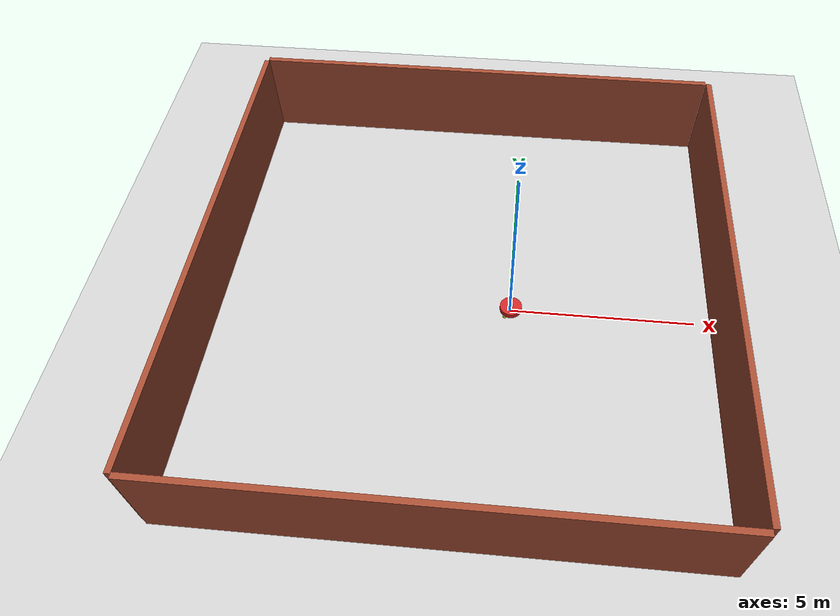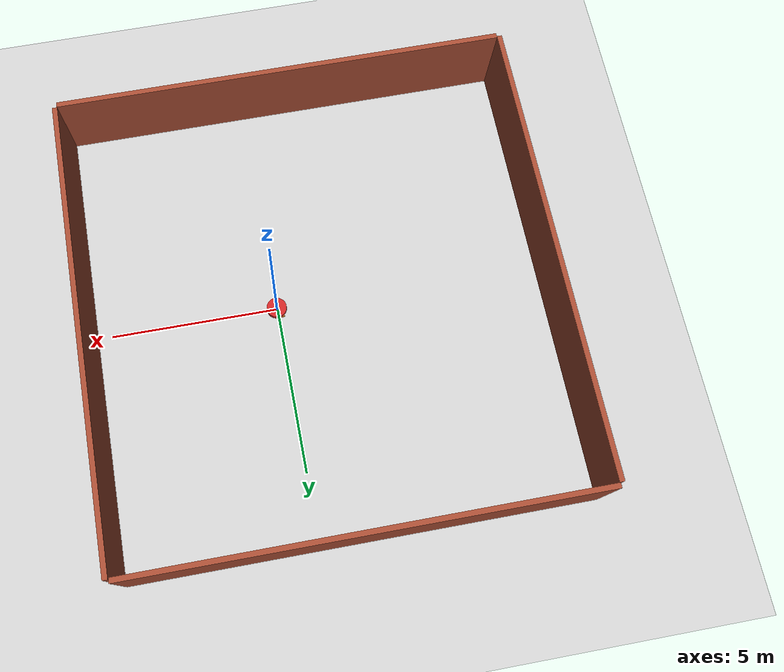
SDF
<sdf version="1.7">
 <world name="default">
  <light name="sun" type="directional">
   <pose>0 0 10 0 -0 0</pose>
   <diffuse>0.8 0.8 0.8 1</diffuse>
   <specular>0.2 0.2 0.2 1</specular>
   <attenuation>
    <range>1000</range>
    <constant>0.9</constant>
    <linear>0.01</linear>
    <quadratic>0.001</quadratic>
   </attenuation>
   <direction>-0.5 0.1 -0.9</direction>
   <spot><inner_angle>0</inner_angle><outer_angle>0</outer_angle><falloff>0</falloff></spot>
  </light>
  <model name="ground_plane">
   <static>1</static>
   <link name="link">
    <collision name="collision">
     <geometry><plane><normal>0 0 1</normal><size>100 100</size></plane></geometry>
     <surface>
      <contact><collide_bitmask>65535</collide_bitmask></contact>
      <friction><ode><mu>100</mu><mu2>50</mu2></ode></friction>
     </surface>
    </collision>
    <visual name="visual">
     <cast_shadows>0</cast_shadows>
     <geometry><plane><normal>0 0 1</normal><size>100 100</size></plane></geometry>
     <material>
      <script><uri>file://media/materials/scripts/gazebo.material</uri><name>Gazebo/Grey</name></script>
     </material>
    </visual>
   </link>
  </model>
  <gravity>0 0 -9.8</gravity>
  <magnetic_field>6e-06 2.3e-05 -4.2e-05</magnetic_field>
  <atmosphere type="adiabatic"/>
  <physics type="ode">
   <max_step_size>0.001</max_step_size>
   <real_time_factor>1</real_time_factor>
   <real_time_update_rate>1000</real_time_update_rate>
  </physics>
  <scene><ambient>0.4 0.4 0.4 1</ambient><background>0.7 0.7 0.7 1</background><shadows>1</shadows></scene>
  <audio><device>default</device></audio>
  <spherical_coordinates>
   <surface_model>EARTH_WGS84</surface_model>
   <latitude_deg>0</latitude_deg>
   <longitude_deg>0</longitude_deg>
   <elevation>0</elevation>
   <heading_deg>0</heading_deg>
  </spherical_coordinates>
  <model name="mobile_bot">
   <link name="base_link">
    <inertial>
     <pose>0.048 0 0.068 0 -0 0</pose>
     <mass>0.5</mass>
     <inertia>
      <ixx>0.00953633</ixx>
      <ixy>0</ixy>
      <ixz>0.001632</ixz>
      <iyy>0.0141443</iyy>
      <iyz>0</iyz>
      <izz>0.018333</izz>
     </inertia>
    </inertial>
    <collision name="base_link_fixed_joint_lump__round_body_collision">
     <pose>0 0 0.1 0 -0 0</pose>
     <geometry><cylinder><length>0.15</length><radius>0.3</radius></cylinder></geometry>
    </collision>
    <collision name="base_link_fixed_joint_lump__caster_wheel_collision_1">
     <pose>0.24 0 0 0 -0 0</pose>
     <geometry><sphere><radius>0.05</radius></sphere></geometry>
     <surface><friction><ode><mu>0.001</mu><mu2>0.001</mu2></ode></friction></surface>
    </collision>
    <collision name="base_link_fixed_joint_lump__lidar_link_collision_2">
     <pose>0 0 0.19 0 -0 0</pose>
     <geometry><cylinder><length>0.04</length><radius>0.05</radius></cylinder></geometry>
    </collision>
    <visual name="base_link_fixed_joint_lump__round_body_visual">
     <pose>0 0 0.1 0 -0 0</pose>
     <geometry><cylinder><length>0.15</length><radius>0.3</radius></cylinder></geometry>
     <material>
      <script><name>Gazebo/Red</name><uri>file://media/materials/scripts/gazebo.material</uri></script>
     </material>
    </visual>
    <visual name="base_link_fixed_joint_lump__camera_link_visual_1">
     <pose>0.3 0 0.07 0 -0 0</pose>
     <geometry><box><size>0.01 0.03 0.03</size></box></geometry>
     <material>
      <script><name>Gazebo/Green</name><uri>file://media/materials/scripts/gazebo.material</uri></script>
     </material>
    </visual>
    <visual name="base_link_fixed_joint_lump__caster_wheel_visual_2">
     <pose>0.24 0 0 0 -0 0</pose>
     <geometry><sphere><radius>0.05</radius></sphere></geometry>
     <material>
      <script><name>Gazebo/Blue</name><uri>file://media/materials/scripts/gazebo.material</uri></script>
     </material>
    </visual>
    <visual name="base_link_fixed_joint_lump__lidar_link_visual_3">
     <pose>0 0 0.19 0 -0 0</pose>
     <geometry><cylinder><length>0.04</length><radius>0.05</radius></cylinder></geometry>
     <material>
      <script><name>Gazebo/Green</name><uri>file://media/materials/scripts/gazebo.material</uri></script>
     </material>
    </visual>
    <sensor name="camera" type="camera">
     <visualize>1</visualize>
     <update_rate>10</update_rate>
     <camera>
      <horizontal_fov>1.5708</horizontal_fov>
      <image><format>R8G8B8</format><width>640</width><height>480</height></image>
      <clip><near>0.05</near><far>8</far></clip>
     </camera>
     <plugin name="camera_controller" filename="libgazebo_ros_camera.so">
      <frame_name>camera_link_optical</frame_name>
     </plugin>
     <pose>0.3 0 0.07 0 -0 0</pose>
    </sensor>
    <sensor name="laser" type="ray">
     <visualize>1</visualize>
     <update_rate>10</update_rate>
     <ray>
      <scan>
       <horizontal>
        <samples>180</samples>
        <min_angle>-0.7854</min_angle>
        <max_angle>0.7854</max_angle>
        <resolution>1</resolution>
       </horizontal>
       <vertical><samples>1</samples><min_angle>0</min_angle><max_angle>0</max_angle></vertical>
      </scan>
      <range><min>0.3</min><max>5</max></range>
     </ray>
     <plugin name="laser_controller" filename="libgazebo_ros_ray_sensor.so">
      <ros><argument>~/out:=scan</argument></ros>
      <output_type>sensor_msgs/LaserScan</output_type>
      <frame_name>lidar_link</frame_name>
     </plugin>
     <pose>0 0 0.19 0 -0 0</pose>
    </sensor>
   </link>
   <joint name="left_wheel_joint" type="revolute">
    <pose relative_to="base_link">-0.15 0.25 0 -1.57 0 0</pose>
    <parent>base_link</parent>
    <child>left_wheel</child>
    <axis>
     <xyz>0 0 1</xyz>
     <limit><lower>-1e+16</lower><upper>1e+16</upper></limit>
     <dynamics><spring_reference>0</spring_reference><spring_stiffness>0</spring_stiffness></dynamics>
    </axis>
   </joint>
   <link name="left_wheel">
    <pose relative_to="left_wheel_joint">0 0 0 0 -0 0</pose>
    <inertial>
     <mass>0.1</mass>
     <inertia>
      <ixx>8.33333e-05</ixx>
      <ixy>0</ixy>
      <ixz>0</ixz>
      <iyy>8.33333e-05</iyy>
      <iyz>0</iyz>
      <izz>0.000125</izz>
     </inertia>
    </inertial>
    <collision name="left_wheel_collision">
     <geometry><cylinder><length>0.04</length><radius>0.05</radius></cylinder></geometry>
    </collision>
    <visual name="left_wheel_visual">
     <geometry><cylinder><length>0.04</length><radius>0.05</radius></cylinder></geometry>
     <material>
      <script><name>Gazebo/Orange</name><uri>file://media/materials/scripts/gazebo.material</uri></script>
     </material>
    </visual>
   </link>
   <joint name="right_wheel_joint" type="revolute">
    <pose relative_to="base_link">-0.15 -0.25 0 1.57 -0 0</pose>
    <parent>base_link</parent>
    <child>right_wheel</child>
    <axis>
     <xyz>0 0 -1</xyz>
     <limit><lower>-1e+16</lower><upper>1e+16</upper></limit>
     <dynamics><spring_reference>0</spring_reference><spring_stiffness>0</spring_stiffness></dynamics>
    </axis>
   </joint>
   <link name="right_wheel">
    <pose relative_to="right_wheel_joint">0 0 0 0 -0 0</pose>
    <inertial>
     <mass>0.1</mass>
     <inertia>
      <ixx>8.33333e-05</ixx>
      <ixy>0</ixy>
      <ixz>0</ixz>
      <iyy>8.33333e-05</iyy>
      <iyz>0</iyz>
      <izz>0.000125</izz>
     </inertia>
    </inertial>
    <collision name="right_wheel_collision">
     <geometry><cylinder><length>0.04</length><radius>0.05</radius></cylinder></geometry>
    </collision>
    <visual name="right_wheel_visual">
     <geometry><cylinder><length>0.04</length><radius>0.05</radius></cylinder></geometry>
     <material>
      <script><name>Gazebo/Yellow</name><uri>file://media/materials/scripts/gazebo.material</uri></script>
     </material>
    </visual>
   </link>
   <static>0</static>
   <plugin name="diff_drive" filename="libgazebo_ros_diff_drive.so">
    <left_joint>left_wheel_joint</left_joint>
    <right_joint>right_wheel_joint</right_joint>
    <wheel_separation>0.50</wheel_separation>
    <wheel_diameter>0.1</wheel_diameter>
    <max_wheel_torque>200</max_wheel_torque>
    <max_wheel_acceleration>10.0</max_wheel_acceleration>
    <odometry_frame>odom</odometry_frame>
    <robot_base_frame>base_link</robot_base_frame>
    <publish_odom>1</publish_odom>
    <publish_odom_tf>1</publish_odom_tf>
    <publish_wheel_tf>1</publish_wheel_tf>
   </plugin>
   <pose>0.020415 0.000431 0.050008 -1e-05 3.2e-05 -0.000719</pose>
  </model>
  <model name="four_walls">
   <link name="Wall_4">
    <pose>-1.54097 7.13997 0 0 -0 0</pose>
    <inertial>
     <inertia><ixx>0</ixx><ixy>0</ixy><ixz>0</ixz><iyy>0</iyy><iyz>0</iyz><izz>0</izz></inertia>
     <mass>0</mass>
    </inertial>
    <visual name="Wall_4_Visual">
     <pose>0 0 1.25 0 -0 0</pose>
     <geometry><box><size>13.3867 0.15 2.5</size></box></geometry>
     <material>
      <script><uri>file://media/materials/scripts/gazebo.material</uri><name>Gazebo/Bricks</name></script>
      <shader type="pixel"/>
     </material>
    </visual>
    <collision name="Wall_4_Collision">
     <pose>0 0 1.25 0 -0 0</pose>
     <geometry><box><size>13.3867 0.15 2.5</size></box></geometry>
     <surface>
      <friction>
       <ode><mu>1</mu><mu2>1</mu2><fdir1>0 0 0</fdir1><slip1>0</slip1><slip2>0</slip2></ode>
       <torsional>
        <coefficient>1</coefficient>
        <patch_radius>0</patch_radius>
        <surface_radius>0</surface_radius>
        <use_patch_radius>1</use_patch_radius>
        <ode><slip>0</slip></ode>
       </torsional>
      </friction>
      <bounce><restitution_coefficient>0</restitution_coefficient><threshold>1e+06</threshold></bounce>
      <contact>
       <collide_without_contact>0</collide_without_contact>
       <collide_without_contact_bitmask>1</collide_without_contact_bitmask>
       <collide_bitmask>1</collide_bitmask>
       <ode>
        <soft_cfm>0</soft_cfm>
        <soft_erp>0.2</soft_erp>
        <kp>1e+13</kp>
        <kd>1</kd>
        <max_vel>0.01</max_vel>
        <min_depth>0</min_depth>
       </ode>
       <bullet>
        <split_impulse>1</split_impulse>
        <split_impulse_penetration_threshold>-0.01</split_impulse_penetration_threshold>
        <soft_cfm>0</soft_cfm>
        <soft_erp>0.2</soft_erp>
        <kp>1e+13</kp>
        <kd>1</kd>
       </bullet>
      </contact>
     </surface>
    </collision>
   </link>
   <link name="Wall_4_clone">
    <pose>-1.51314 -6.6153 0 0 -0 0</pose>
    <inertial>
     <inertia><ixx>0</ixx><ixy>0</ixy><ixz>0</ixz><iyy>0</iyy><iyz>0</iyz><izz>0</izz></inertia>
     <mass>0</mass>
    </inertial>
    <visual name="Wall_4_Visual">
     <pose>0 0 1.25 0 -0 0</pose>
     <geometry><box><size>13.3867 0.15 2.5</size></box></geometry>
     <material>
      <script><uri>file://media/materials/scripts/gazebo.material</uri><name>Gazebo/Bricks</name></script>
      <shader type="pixel"/>
     </material>
    </visual>
    <collision name="Wall_4_Collision">
     <pose>0 0 1.25 0 -0 0</pose>
     <geometry><box><size>13.3867 0.15 2.5</size></box></geometry>
     <surface>
      <friction>
       <ode><mu>1</mu><mu2>1</mu2><fdir1>0 0 0</fdir1><slip1>0</slip1><slip2>0</slip2></ode>
       <torsional>
        <coefficient>1</coefficient>
        <patch_radius>0</patch_radius>
        <surface_radius>0</surface_radius>
        <use_patch_radius>1</use_patch_radius>
        <ode><slip>0</slip></ode>
       </torsional>
      </friction>
      <bounce><restitution_coefficient>0</restitution_coefficient><threshold>1e+06</threshold></bounce>
      <contact>
       <collide_without_contact>0</collide_without_contact>
       <collide_without_contact_bitmask>1</collide_without_contact_bitmask>
       <collide_bitmask>1</collide_bitmask>
       <ode>
        <soft_cfm>0</soft_cfm>
        <soft_erp>0.2</soft_erp>
        <kp>1e+13</kp>
        <kd>1</kd>
        <max_vel>0.01</max_vel>
        <min_depth>0</min_depth>
       </ode>
       <bullet>
        <split_impulse>1</split_impulse>
        <split_impulse_penetration_threshold>-0.01</split_impulse_penetration_threshold>
        <soft_cfm>0</soft_cfm>
        <soft_erp>0.2</soft_erp>
        <kp>1e+13</kp>
        <kd>1</kd>
       </bullet>
      </contact>
     </surface>
    </collision>
   </link>
   <link name="Wall_6">
    <pose>5.24615 0.292041 0 0 0 -1.5708</pose>
    <inertial>
     <inertia><ixx>0</ixx><ixy>0</ixy><ixz>0</ixz><iyy>0</iyy><iyz>0</iyz><izz>0</izz></inertia>
     <mass>0</mass>
    </inertial>
    <visual name="Wall_6_Visual">
     <pose>0 0 1.25 0 -0 0</pose>
     <geometry><box><size>13.6388 0.15 2.5</size></box></geometry>
     <material>
      <script><uri>file://media/materials/scripts/gazebo.material</uri><name>Gazebo/Bricks</name></script>
      <shader type="pixel"/>
     </material>
    </visual>
    <collision name="Wall_6_Collision">
     <pose>0 0 1.25 0 -0 0</pose>
     <geometry><box><size>13.6388 0.15 2.5</size></box></geometry>
     <surface>
      <friction>
       <ode><mu>1</mu><mu2>1</mu2><fdir1>0 0 0</fdir1><slip1>0</slip1><slip2>0</slip2></ode>
       <torsional>
        <coefficient>1</coefficient>
        <patch_radius>0</patch_radius>
        <surface_radius>0</surface_radius>
        <use_patch_radius>1</use_patch_radius>
        <ode><slip>0</slip></ode>
       </torsional>
      </friction>
      <bounce><restitution_coefficient>0</restitution_coefficient><threshold>1e+06</threshold></bounce>
      <contact>
       <collide_without_contact>0</collide_without_contact>
       <collide_without_contact_bitmask>1</collide_without_contact_bitmask>
       <collide_bitmask>1</collide_bitmask>
       <ode>
        <soft_cfm>0</soft_cfm>
        <soft_erp>0.2</soft_erp>
        <kp>1e+13</kp>
        <kd>1</kd>
        <max_vel>0.01</max_vel>
        <min_depth>0</min_depth>
       </ode>
       <bullet>
        <split_impulse>1</split_impulse>
        <split_impulse_penetration_threshold>-0.01</split_impulse_penetration_threshold>
        <soft_cfm>0</soft_cfm>
        <soft_erp>0.2</soft_erp>
        <kp>1e+13</kp>
        <kd>1</kd>
       </bullet>
      </contact>
     </surface>
    </collision>
   </link>
   <link name="Wall_6_clone">
    <pose>-8.28501 0.233544 0 0 0 -1.5708</pose>
    <inertial>
     <inertia><ixx>0</ixx><ixy>0</ixy><ixz>0</ixz><iyy>0</iyy><iyz>0</iyz><izz>0</izz></inertia>
     <mass>0</mass>
    </inertial>
    <visual name="Wall_6_Visual">
     <pose>0 0 1.25 0 -0 0</pose>
     <geometry><box><size>13.6388 0.15 2.5</size></box></geometry>
     <material>
      <script><uri>file://media/materials/scripts/gazebo.material</uri><name>Gazebo/Bricks</name></script>
      <shader type="pixel"/>
     </material>
    </visual>
    <collision name="Wall_6_Collision">
     <pose>0 0 1.25 0 -0 0</pose>
     <geometry><box><size>13.6388 0.15 2.5</size></box></geometry>
     <surface>
      <friction>
       <ode><mu>1</mu><mu2>1</mu2><fdir1>0 0 0</fdir1><slip1>0</slip1><slip2>0</slip2></ode>
       <torsional>
        <coefficient>1</coefficient>
        <patch_radius>0</patch_radius>
        <surface_radius>0</surface_radius>
        <use_patch_radius>1</use_patch_radius>
        <ode><slip>0</slip></ode>
       </torsional>
      </friction>
      <bounce><restitution_coefficient>0</restitution_coefficient><threshold>1e+06</threshold></bounce>
      <contact>
       <collide_without_contact>0</collide_without_contact>
       <collide_without_contact_bitmask>1</collide_without_contact_bitmask>
       <collide_bitmask>1</collide_bitmask>
       <ode>
        <soft_cfm>0</soft_cfm>
        <soft_erp>0.2</soft_erp>
        <kp>1e+13</kp>
        <kd>1</kd>
        <max_vel>0.01</max_vel>
        <min_depth>0</min_depth>
       </ode>
       <bullet>
        <split_impulse>1</split_impulse>
        <split_impulse_penetration_threshold>-0.01</split_impulse_penetration_threshold>
        <soft_cfm>0</soft_cfm>
        <soft_erp>0.2</soft_erp>
        <kp>1e+13</kp>
        <kd>1</kd>
       </bullet>
      </contact>
     </surface>
    </collision>
   </link>
   <static>1</static>
   <pose>0.252422 -0.016829 0 0 -0 0</pose>
  </model>
 </world>
</sdf>
